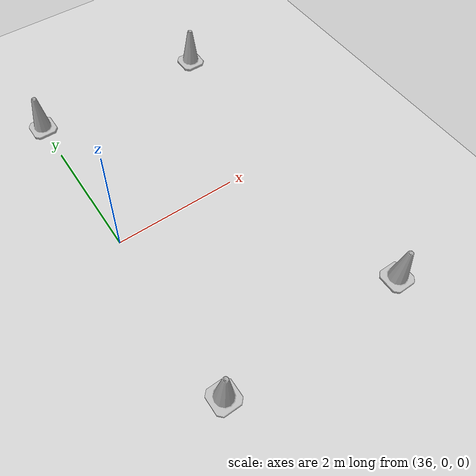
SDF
<sdf version="1.7">
 <world name="default">
  <model name="ground_plane">
   <static>1</static>
   <link name="link">
    <collision name="collision">
     <geometry><plane><normal>0 0 1</normal><size>100 100</size></plane></geometry>
     <surface>
      <contact><collide_bitmask>65535</collide_bitmask></contact>
      <friction><ode><mu>100</mu><mu2>50</mu2></ode></friction>
     </surface>
    </collision>
    <visual name="visual">
     <cast_shadows>0</cast_shadows>
     <geometry><plane><normal>0 0 1</normal><size>100 100</size></plane></geometry>
     <material>
      <script><uri>file://media/materials/scripts/gazebo.material</uri><name>Gazebo/Grey</name></script>
     </material>
    </visual>
   </link>
  </model>
  <model name="Construction_Cone_b_16">
   <link name="link">
    <inertial>
     <inertia><ixx>1</ixx><ixy>0</ixy><ixz>0</ixz><iyy>1</iyy><iyz>0</iyz><izz>1</izz></inertia>
     <mass>1</mass>
    </inertial>
    <visual name="visual">
     <geometry>
      <mesh><scale>8 8 6.7</scale><uri>./construction_cone/meshes/construction_cone_b.dae</uri></mesh>
     </geometry>
     <material><shader type="pixel"/></material>
    </visual>
    <collision name="collision">
     <geometry>
      <mesh><uri>./construction_cone/meshes/construction_cone_b.dae</uri><scale>8 8 6.7</scale></mesh>
     </geometry>
     <surface>
      <friction>
       <ode><mu>1</mu><mu2>1</mu2><fdir1>0 0 0</fdir1><slip1>0</slip1><slip2>0</slip2></ode>
       <torsional>
        <coefficient>1</coefficient>
        <patch_radius>0</patch_radius>
        <surface_radius>0</surface_radius>
        <use_patch_radius>1</use_patch_radius>
        <ode><slip>0</slip></ode>
       </torsional>
      </friction>
      <bounce><restitution_coefficient>0</restitution_coefficient><threshold>1e+06</threshold></bounce>
      <contact>
       <collide_without_contact>0</collide_without_contact>
       <collide_without_contact_bitmask>1</collide_without_contact_bitmask>
       <collide_bitmask>1</collide_bitmask>
       <ode>
        <soft_cfm>0</soft_cfm>
        <soft_erp>0.2</soft_erp>
        <kp>1e+13</kp>
        <kd>1</kd>
        <max_vel>0.01</max_vel>
        <min_depth>0</min_depth>
       </ode>
       <bullet>
        <split_impulse>1</split_impulse>
        <split_impulse_penetration_threshold>-0.01</split_impulse_penetration_threshold>
        <soft_cfm>0</soft_cfm>
        <soft_erp>0.2</soft_erp>
        <kp>1e+13</kp>
        <kd>1</kd>
       </bullet>
      </contact>
     </surface>
    </collision>
   </link>
   <static>0</static>
   <pose>36.0003 -2.70158 -0 0 -0 0</pose>
  </model>
  <model name="Construction_Cone_b_18">
   <link name="link">
    <inertial>
     <inertia><ixx>1</ixx><ixy>0</ixy><ixz>0</ixz><iyy>1</iyy><iyz>0</iyz><izz>1</izz></inertia>
     <mass>1</mass>
    </inertial>
    <visual name="visual">
     <geometry>
      <mesh><scale>8 8 6.7</scale><uri>./construction_cone/meshes/construction_cone_b.dae</uri></mesh>
     </geometry>
     <material><shader type="pixel"/></material>
    </visual>
    <collision name="collision">
     <geometry>
      <mesh><uri>./construction_cone/meshes/construction_cone_b.dae</uri><scale>8 8 6.7</scale></mesh>
     </geometry>
     <surface>
      <friction>
       <ode><mu>1</mu><mu2>1</mu2><fdir1>0 0 0</fdir1><slip1>0</slip1><slip2>0</slip2></ode>
       <torsional>
        <coefficient>1</coefficient>
        <patch_radius>0</patch_radius>
        <surface_radius>0</surface_radius>
        <use_patch_radius>1</use_patch_radius>
        <ode><slip>0</slip></ode>
       </torsional>
      </friction>
      <bounce><restitution_coefficient>0</restitution_coefficient><threshold>1e+06</threshold></bounce>
      <contact>
       <collide_without_contact>0</collide_without_contact>
       <collide_without_contact_bitmask>1</collide_without_contact_bitmask>
       <collide_bitmask>1</collide_bitmask>
       <ode>
        <soft_cfm>0</soft_cfm>
        <soft_erp>0.2</soft_erp>
        <kp>1e+13</kp>
        <kd>1</kd>
        <max_vel>0.01</max_vel>
        <min_depth>0</min_depth>
       </ode>
       <bullet>
        <split_impulse>1</split_impulse>
        <split_impulse_penetration_threshold>-0.01</split_impulse_penetration_threshold>
        <soft_cfm>0</soft_cfm>
        <soft_erp>0.2</soft_erp>
        <kp>1e+13</kp>
        <kd>1</kd>
       </bullet>
      </contact>
     </surface>
    </collision>
   </link>
   <static>0</static>
   <pose>39.0005 -2.70153 -0 0 -0 0</pose>
  </model>
  <model name="Construction_Cone_y_11">
   <link name="link">
    <inertial>
     <inertia><ixx>1</ixx><ixy>0</ixy><ixz>0</ixz><iyy>1</iyy><iyz>0</iyz><izz>1</izz></inertia>
     <mass>1</mass>
    </inertial>
    <visual name="visual">
     <geometry>
      <mesh><scale>8 8 6.7</scale><uri>./construction_cone/meshes/construction_cone_y.dae</uri></mesh>
     </geometry>
     <material><shader type="pixel"/></material>
    </visual>
    <collision name="collision">
     <geometry>
      <mesh><uri>./construction_cone/meshes/construction_cone_y.dae</uri><scale>8 8 6.7</scale></mesh>
     </geometry>
     <surface>
      <friction>
       <ode><mu>1</mu><mu2>1</mu2><fdir1>0 0 0</fdir1><slip1>0</slip1><slip2>0</slip2></ode>
       <torsional>
        <coefficient>1</coefficient>
        <patch_radius>0</patch_radius>
        <surface_radius>0</surface_radius>
        <use_patch_radius>1</use_patch_radius>
        <ode><slip>0</slip></ode>
       </torsional>
      </friction>
      <bounce><restitution_coefficient>0</restitution_coefficient><threshold>1e+06</threshold></bounce>
      <contact>
       <collide_without_contact>0</collide_without_contact>
       <collide_without_contact_bitmask>1</collide_without_contact_bitmask>
       <collide_bitmask>1</collide_bitmask>
       <ode>
        <soft_cfm>0</soft_cfm>
        <soft_erp>0.2</soft_erp>
        <kp>1e+13</kp>
        <kd>1</kd>
        <max_vel>0.01</max_vel>
        <min_depth>0</min_depth>
       </ode>
       <bullet>
        <split_impulse>1</split_impulse>
        <split_impulse_penetration_threshold>-0.01</split_impulse_penetration_threshold>
        <soft_cfm>0</soft_cfm>
        <soft_erp>0.2</soft_erp>
        <kp>1e+13</kp>
        <kd>1</kd>
       </bullet>
      </contact>
     </surface>
    </collision>
   </link>
   <static>0</static>
   <pose>35.9979 2.70154 -0 0 -0 0</pose>
  </model>
  <model name="Construction_Cone_y_12">
   <link name="link">
    <inertial>
     <inertia><ixx>1</ixx><ixy>0</ixy><ixz>0</ixz><iyy>1</iyy><iyz>0</iyz><izz>1</izz></inertia>
     <mass>1</mass>
    </inertial>
    <visual name="visual">
     <geometry>
      <mesh><scale>8 8 6.7</scale><uri>./construction_cone/meshes/construction_cone_y.dae</uri></mesh>
     </geometry>
     <material><shader type="pixel"/></material>
    </visual>
    <collision name="collision">
     <geometry>
      <mesh><uri>./construction_cone/meshes/construction_cone_y.dae</uri><scale>8 8 6.7</scale></mesh>
     </geometry>
     <surface>
      <friction>
       <ode><mu>1</mu><mu2>1</mu2><fdir1>0 0 0</fdir1><slip1>0</slip1><slip2>0</slip2></ode>
       <torsional>
        <coefficient>1</coefficient>
        <patch_radius>0</patch_radius>
        <surface_radius>0</surface_radius>
        <use_patch_radius>1</use_patch_radius>
        <ode><slip>0</slip></ode>
       </torsional>
      </friction>
      <bounce><restitution_coefficient>0</restitution_coefficient><threshold>1e+06</threshold></bounce>
      <contact>
       <collide_without_contact>0</collide_without_contact>
       <collide_without_contact_bitmask>1</collide_without_contact_bitmask>
       <collide_bitmask>1</collide_bitmask>
       <ode>
        <soft_cfm>0</soft_cfm>
        <soft_erp>0.2</soft_erp>
        <kp>1e+13</kp>
        <kd>1</kd>
        <max_vel>0.01</max_vel>
        <min_depth>0</min_depth>
       </ode>
       <bullet>
        <split_impulse>1</split_impulse>
        <split_impulse_penetration_threshold>-0.01</split_impulse_penetration_threshold>
        <soft_cfm>0</soft_cfm>
        <soft_erp>0.2</soft_erp>
        <kp>1e+13</kp>
        <kd>1</kd>
       </bullet>
      </contact>
     </surface>
    </collision>
   </link>
   <static>0</static>
   <pose>38.9992 2.70169 -0 0 -0 0</pose>
  </model>
 </world>
</sdf>
